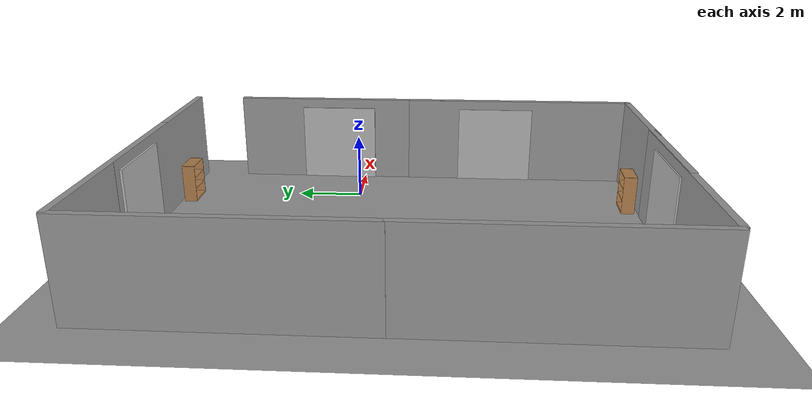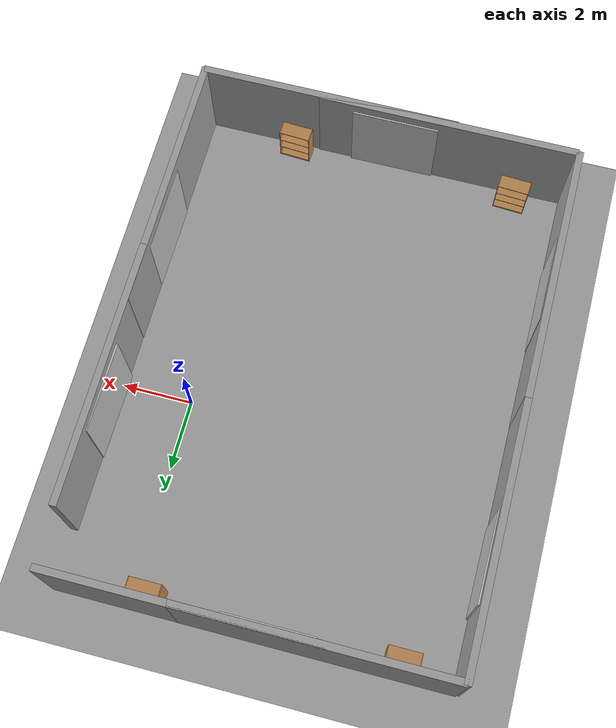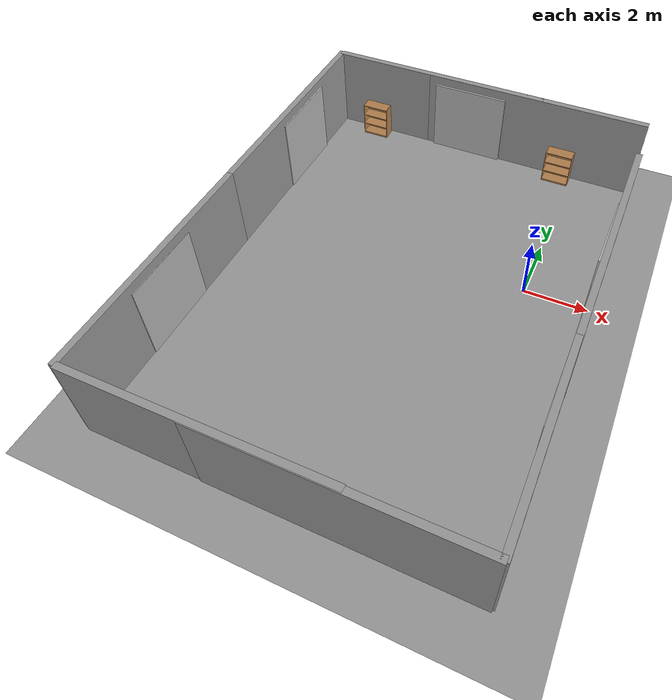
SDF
<sdf version="1.6">
 <world name="default">
  <light name="sun" type="directional">
   <pose>0 0 10 0 -0 0</pose>
   <diffuse>0.8 0.8 0.8 1</diffuse>
   <specular>0.2 0.2 0.2 1</specular>
   <attenuation>
    <range>1000</range>
    <constant>0.9</constant>
    <linear>0.01</linear>
    <quadratic>0.001</quadratic>
   </attenuation>
   <direction>0.5 0.1 -0.9</direction>
  </light>
  <scene><ambient>0.4 0.4 0.4 1</ambient><background>0.7 0.7 0.7 1</background><shadows>1</shadows></scene>
  <physics name="default_physics" default="0" type="ode">
   <max_step_size>0.01</max_step_size>
   <real_time_factor>1</real_time_factor>
   <real_time_update_rate>100</real_time_update_rate>
  </physics>
  <model name="ground_plane_0">
   <static>1</static>
   <link name="link">
    <collision name="collision">
     <geometry><plane><normal>0 0 1</normal><size>100 100</size></plane></geometry>
     <surface><friction><ode><mu>100</mu><mu2>50</mu2></ode></friction></surface>
    </collision>
    <visual name="visual">
     <cast_shadows>0</cast_shadows>
     <geometry><plane><normal>0 0 1</normal><size>100 100</size></plane></geometry>
     <material>
      <script><uri>file://media/materials/scripts/gazebo.material</uri><name>Gazebo/Grey</name></script>
     </material>
    </visual>
    <velocity_decay><linear>0</linear><angular>0</angular></velocity_decay>
   </link>
   <pose>0.497681 0 0 0 -0 0</pose>
  </model>
  <gravity>0 0 -9.8</gravity>
  <magnetic_field>6e-06 2.3e-05 -4.2e-05</magnetic_field>
  <atmosphere type="adiabatic"/>
  <spherical_coordinates>
   <surface_model>EARTH_WGS84</surface_model>
   <latitude_deg>0</latitude_deg>
   <longitude_deg>0</longitude_deg>
   <elevation>0</elevation>
   <heading_deg>0</heading_deg>
  </spherical_coordinates>
  <model name="grey_wall">
   <static>1</static>
   <link name="link">
    <pose>0 0 1.4 0 -0 0</pose>
    <collision name="collision"><geometry><box><size>7.5 0.2 2.8</size></box></geometry></collision>
    <visual name="visual">
     <cast_shadows>0</cast_shadows>
     <geometry><box><size>7.5 0.2 2.8</size></box></geometry>
     <material>
      <script>
       <uri>model://grey_wall/materials/scripts</uri>
       <uri>model://grey_wall/materials/textures</uri>
       <name>vrc/grey_wall</name>
      </script>
     </material>
    </visual>
   </link>
   <pose>-5.17478 -8.96685 0 0 -0 0</pose>
  </model>
  <model name="grey_wall_0">
   <static>1</static>
   <link name="link">
    <pose>0 0 1.4 0 -0 0</pose>
    <collision name="collision"><geometry><box><size>7.5 0.2 2.8</size></box></geometry></collision>
    <visual name="visual">
     <cast_shadows>0</cast_shadows>
     <geometry><box><size>7.5 0.2 2.8</size></box></geometry>
     <material>
      <script>
       <uri>model://grey_wall/materials/scripts</uri>
       <uri>model://grey_wall/materials/textures</uri>
       <name>vrc/grey_wall</name>
      </script>
     </material>
    </visual>
   </link>
   <pose>-5.20024 5.87324 0 0 -0 0</pose>
  </model>
  <model name="grey_wall_1">
   <static>1</static>
   <link name="link">
    <pose>0 0 1.4 0 -0 0</pose>
    <collision name="collision"><geometry><box><size>7.5 0.2 2.8</size></box></geometry></collision>
    <visual name="visual">
     <cast_shadows>0</cast_shadows>
     <geometry><box><size>7.5 0.2 2.8</size></box></geometry>
     <material>
      <script>
       <uri>model://grey_wall/materials/scripts</uri>
       <uri>model://grey_wall/materials/textures</uri>
       <name>vrc/grey_wall</name>
      </script>
     </material>
    </visual>
   </link>
   <pose>-8.94983 -5.2622 0 0 0 -1.57186</pose>
  </model>
  <model name="grey_wall_1_clone">
   <static>1</static>
   <link name="link">
    <pose>0 0 1.4 0 -0 0</pose>
    <collision name="collision"><geometry><box><size>7.5 0.2 2.8</size></box></geometry></collision>
    <visual name="visual">
     <cast_shadows>0</cast_shadows>
     <geometry><box><size>7.5 0.2 2.8</size></box></geometry>
     <material>
      <script>
       <uri>model://grey_wall/materials/scripts</uri>
       <uri>model://grey_wall/materials/textures</uri>
       <name>vrc/grey_wall</name>
      </script>
     </material>
    </visual>
   </link>
   <pose>-8.94708 2.18409 0 0 0 -1.57186</pose>
  </model>
  <model name="grey_wall_clone">
   <static>1</static>
   <link name="link">
    <pose>0 0 1.4 0 -0 0</pose>
    <collision name="collision"><geometry><box><size>7.5 0.2 2.8</size></box></geometry></collision>
    <visual name="visual">
     <cast_shadows>0</cast_shadows>
     <geometry><box><size>7.5 0.2 2.8</size></box></geometry>
     <material>
      <script>
       <uri>model://grey_wall/materials/scripts</uri>
       <uri>model://grey_wall/materials/textures</uri>
       <name>vrc/grey_wall</name>
      </script>
     </material>
    </visual>
   </link>
   <pose>-1.70554 -8.99232 0 0 -0 0</pose>
  </model>
  <model name="grey_wall_clone_0">
   <static>1</static>
   <link name="link">
    <pose>0 0 1.4 0 -0 0</pose>
    <collision name="collision"><geometry><box><size>7.5 0.2 2.8</size></box></geometry></collision>
    <visual name="visual">
     <cast_shadows>0</cast_shadows>
     <geometry><box><size>7.5 0.2 2.8</size></box></geometry>
     <material>
      <script>
       <uri>model://grey_wall/materials/scripts</uri>
       <uri>model://grey_wall/materials/textures</uri>
       <name>vrc/grey_wall</name>
      </script>
     </material>
    </visual>
   </link>
   <pose>-1.72227 5.87072 0 0 -0 0</pose>
  </model>
  <model name="grey_wall_1_clone_0">
   <static>1</static>
   <link name="link">
    <pose>0 0 1.4 0 -0 0</pose>
    <collision name="collision"><geometry><box><size>7.5 0.2 2.8</size></box></geometry></collision>
    <visual name="visual">
     <cast_shadows>0</cast_shadows>
     <geometry><box><size>7.5 0.2 2.8</size></box></geometry>
     <material>
      <script>
       <uri>model://grey_wall/materials/scripts</uri>
       <uri>model://grey_wall/materials/textures</uri>
       <name>vrc/grey_wall</name>
      </script>
     </material>
    </visual>
   </link>
   <pose>2.00289 -5.28935 0 0 0 -1.57186</pose>
  </model>
  <model name="grey_wall_1_clone_1">
   <static>1</static>
   <link name="link">
    <pose>0 0 1.4 0 -0 0</pose>
    <collision name="collision"><geometry><box><size>7.5 0.2 2.8</size></box></geometry></collision>
    <visual name="visual">
     <cast_shadows>0</cast_shadows>
     <geometry><box><size>7.5 0.2 2.8</size></box></geometry>
     <material>
      <script>
       <uri>model://grey_wall/materials/scripts</uri>
       <uri>model://grey_wall/materials/textures</uri>
       <name>vrc/grey_wall</name>
      </script>
     </material>
    </visual>
   </link>
   <pose>2.01812 0.540424 0 0 0 -1.57186</pose>
  </model>
  <model name="bookshelf">
   <static>1</static>
   <link name="link">
    <inertial><mass>1</mass></inertial>
    <collision name="back">
     <pose>0 0.005 0.6 0 -0 0</pose>
     <geometry><box><size>0.9 0.01 1.2</size></box></geometry>
    </collision>
    <visual name="visual1">
     <pose>0 0.005 0.6 0 -0 0</pose>
     <geometry><box><size>0.9 0.01 1.2</size></box></geometry>
     <material>
      <script><uri>file://media/materials/scripts/gazebo.material</uri><name>Gazebo/Wood</name></script>
     </material>
    </visual>
    <collision name="left_side">
     <pose>0.45 -0.195 0.6 0 -0 0</pose>
     <geometry><box><size>0.02 0.4 1.2</size></box></geometry>
    </collision>
    <visual name="visual2">
     <pose>0.45 -0.195 0.6 0 -0 0</pose>
     <geometry><box><size>0.02 0.4 1.2</size></box></geometry>
     <material>
      <script><uri>file://media/materials/scripts/gazebo.material</uri><name>Gazebo/Wood</name></script>
     </material>
    </visual>
    <collision name="right_side">
     <pose>-0.45 -0.195 0.6 0 -0 0</pose>
     <geometry><box><size>0.02 0.4 1.2</size></box></geometry>
    </collision>
    <visual name="visual3">
     <pose>-0.45 -0.195 0.6 0 -0 0</pose>
     <geometry><box><size>0.02 0.4 1.2</size></box></geometry>
     <material>
      <script><uri>file://media/materials/scripts/gazebo.material</uri><name>Gazebo/Wood</name></script>
     </material>
    </visual>
    <collision name="bottom">
     <pose>0 -0.195 0.03 0 -0 0</pose>
     <geometry><box><size>0.88 0.4 0.06</size></box></geometry>
    </collision>
    <visual name="visual4">
     <pose>0 -0.195 0.03 0 -0 0</pose>
     <geometry><box><size>0.88 0.4 0.06</size></box></geometry>
     <material>
      <script><uri>file://media/materials/scripts/gazebo.material</uri><name>Gazebo/Wood</name></script>
     </material>
    </visual>
    <collision name="top">
     <pose>0 -0.195 1.19 0 -0 0</pose>
     <geometry><box><size>0.88 0.4 0.02</size></box></geometry>
    </collision>
    <visual name="visual5">
     <pose>0 -0.195 1.19 0 -0 0</pose>
     <geometry><box><size>0.88 0.4 0.02</size></box></geometry>
     <material>
      <script><uri>file://media/materials/scripts/gazebo.material</uri><name>Gazebo/Wood</name></script>
     </material>
    </visual>
    <collision name="low_shelf">
     <pose>0 -0.195 0.43 0 -0 0</pose>
     <geometry><box><size>0.88 0.4 0.02</size></box></geometry>
    </collision>
    <visual name="visual6">
     <pose>0 -0.195 0.43 0 -0 0</pose>
     <geometry><box><size>0.88 0.4 0.02</size></box></geometry>
     <material>
      <script><uri>file://media/materials/scripts/gazebo.material</uri><name>Gazebo/Wood</name></script>
     </material>
    </visual>
    <collision name="high_shelf">
     <pose>0 -0.195 0.8 0 -0 0</pose>
     <geometry><box><size>0.88 0.4 0.02</size></box></geometry>
    </collision>
    <visual name="visual7">
     <pose>0 -0.195 0.8 0 -0 0</pose>
     <geometry><box><size>0.88 0.4 0.02</size></box></geometry>
     <material>
      <script><uri>file://media/materials/scripts/gazebo.material</uri><name>Gazebo/Wood</name></script>
     </material>
    </visual>
   </link>
   <pose>-7.38989 5.65901 0 0 -0 0</pose>
  </model>
  <model name="bookshelf_0">
   <static>1</static>
   <link name="link">
    <inertial><mass>1</mass></inertial>
    <collision name="back">
     <pose>0 0.005 0.6 0 -0 0</pose>
     <geometry><box><size>0.9 0.01 1.2</size></box></geometry>
    </collision>
    <visual name="visual1">
     <pose>0 0.005 0.6 0 -0 0</pose>
     <geometry><box><size>0.9 0.01 1.2</size></box></geometry>
     <material>
      <script><uri>file://media/materials/scripts/gazebo.material</uri><name>Gazebo/Wood</name></script>
     </material>
    </visual>
    <collision name="left_side">
     <pose>0.45 -0.195 0.6 0 -0 0</pose>
     <geometry><box><size>0.02 0.4 1.2</size></box></geometry>
    </collision>
    <visual name="visual2">
     <pose>0.45 -0.195 0.6 0 -0 0</pose>
     <geometry><box><size>0.02 0.4 1.2</size></box></geometry>
     <material>
      <script><uri>file://media/materials/scripts/gazebo.material</uri><name>Gazebo/Wood</name></script>
     </material>
    </visual>
    <collision name="right_side">
     <pose>-0.45 -0.195 0.6 0 -0 0</pose>
     <geometry><box><size>0.02 0.4 1.2</size></box></geometry>
    </collision>
    <visual name="visual3">
     <pose>-0.45 -0.195 0.6 0 -0 0</pose>
     <geometry><box><size>0.02 0.4 1.2</size></box></geometry>
     <material>
      <script><uri>file://media/materials/scripts/gazebo.material</uri><name>Gazebo/Wood</name></script>
     </material>
    </visual>
    <collision name="bottom">
     <pose>0 -0.195 0.03 0 -0 0</pose>
     <geometry><box><size>0.88 0.4 0.06</size></box></geometry>
    </collision>
    <visual name="visual4">
     <pose>0 -0.195 0.03 0 -0 0</pose>
     <geometry><box><size>0.88 0.4 0.06</size></box></geometry>
     <material>
      <script><uri>file://media/materials/scripts/gazebo.material</uri><name>Gazebo/Wood</name></script>
     </material>
    </visual>
    <collision name="top">
     <pose>0 -0.195 1.19 0 -0 0</pose>
     <geometry><box><size>0.88 0.4 0.02</size></box></geometry>
    </collision>
    <visual name="visual5">
     <pose>0 -0.195 1.19 0 -0 0</pose>
     <geometry><box><size>0.88 0.4 0.02</size></box></geometry>
     <material>
      <script><uri>file://media/materials/scripts/gazebo.material</uri><name>Gazebo/Wood</name></script>
     </material>
    </visual>
    <collision name="low_shelf">
     <pose>0 -0.195 0.43 0 -0 0</pose>
     <geometry><box><size>0.88 0.4 0.02</size></box></geometry>
    </collision>
    <visual name="visual6">
     <pose>0 -0.195 0.43 0 -0 0</pose>
     <geometry><box><size>0.88 0.4 0.02</size></box></geometry>
     <material>
      <script><uri>file://media/materials/scripts/gazebo.material</uri><name>Gazebo/Wood</name></script>
     </material>
    </visual>
    <collision name="high_shelf">
     <pose>0 -0.195 0.8 0 -0 0</pose>
     <geometry><box><size>0.88 0.4 0.02</size></box></geometry>
    </collision>
    <visual name="visual7">
     <pose>0 -0.195 0.8 0 -0 0</pose>
     <geometry><box><size>0.88 0.4 0.02</size></box></geometry>
     <material>
      <script><uri>file://media/materials/scripts/gazebo.material</uri><name>Gazebo/Wood</name></script>
     </material>
    </visual>
   </link>
   <pose>-0.48572 5.66462 0 0 -0 0</pose>
  </model>
  <model name="bookshelf_1">
   <static>1</static>
   <link name="link">
    <inertial><mass>1</mass></inertial>
    <collision name="back">
     <pose>0 0.005 0.6 0 -0 0</pose>
     <geometry><box><size>0.9 0.01 1.2</size></box></geometry>
    </collision>
    <visual name="visual1">
     <pose>0 0.005 0.6 0 -0 0</pose>
     <geometry><box><size>0.9 0.01 1.2</size></box></geometry>
     <material>
      <script><uri>file://media/materials/scripts/gazebo.material</uri><name>Gazebo/Wood</name></script>
     </material>
    </visual>
    <collision name="left_side">
     <pose>0.45 -0.195 0.6 0 -0 0</pose>
     <geometry><box><size>0.02 0.4 1.2</size></box></geometry>
    </collision>
    <visual name="visual2">
     <pose>0.45 -0.195 0.6 0 -0 0</pose>
     <geometry><box><size>0.02 0.4 1.2</size></box></geometry>
     <material>
      <script><uri>file://media/materials/scripts/gazebo.material</uri><name>Gazebo/Wood</name></script>
     </material>
    </visual>
    <collision name="right_side">
     <pose>-0.45 -0.195 0.6 0 -0 0</pose>
     <geometry><box><size>0.02 0.4 1.2</size></box></geometry>
    </collision>
    <visual name="visual3">
     <pose>-0.45 -0.195 0.6 0 -0 0</pose>
     <geometry><box><size>0.02 0.4 1.2</size></box></geometry>
     <material>
      <script><uri>file://media/materials/scripts/gazebo.material</uri><name>Gazebo/Wood</name></script>
     </material>
    </visual>
    <collision name="bottom">
     <pose>0 -0.195 0.03 0 -0 0</pose>
     <geometry><box><size>0.88 0.4 0.06</size></box></geometry>
    </collision>
    <visual name="visual4">
     <pose>0 -0.195 0.03 0 -0 0</pose>
     <geometry><box><size>0.88 0.4 0.06</size></box></geometry>
     <material>
      <script><uri>file://media/materials/scripts/gazebo.material</uri><name>Gazebo/Wood</name></script>
     </material>
    </visual>
    <collision name="top">
     <pose>0 -0.195 1.19 0 -0 0</pose>
     <geometry><box><size>0.88 0.4 0.02</size></box></geometry>
    </collision>
    <visual name="visual5">
     <pose>0 -0.195 1.19 0 -0 0</pose>
     <geometry><box><size>0.88 0.4 0.02</size></box></geometry>
     <material>
      <script><uri>file://media/materials/scripts/gazebo.material</uri><name>Gazebo/Wood</name></script>
     </material>
    </visual>
    <collision name="low_shelf">
     <pose>0 -0.195 0.43 0 -0 0</pose>
     <geometry><box><size>0.88 0.4 0.02</size></box></geometry>
    </collision>
    <visual name="visual6">
     <pose>0 -0.195 0.43 0 -0 0</pose>
     <geometry><box><size>0.88 0.4 0.02</size></box></geometry>
     <material>
      <script><uri>file://media/materials/scripts/gazebo.material</uri><name>Gazebo/Wood</name></script>
     </material>
    </visual>
    <collision name="high_shelf">
     <pose>0 -0.195 0.8 0 -0 0</pose>
     <geometry><box><size>0.88 0.4 0.02</size></box></geometry>
    </collision>
    <visual name="visual7">
     <pose>0 -0.195 0.8 0 -0 0</pose>
     <geometry><box><size>0.88 0.4 0.02</size></box></geometry>
     <material>
      <script><uri>file://media/materials/scripts/gazebo.material</uri><name>Gazebo/Wood</name></script>
     </material>
    </visual>
   </link>
   <pose>-7.4507 -8.65106 0 0 -0 3.08429</pose>
  </model>
  <model name="bookshelf_1_clone">
   <static>1</static>
   <link name="link">
    <inertial><mass>1</mass></inertial>
    <collision name="back">
     <pose>0 0.005 0.6 0 -0 0</pose>
     <geometry><box><size>0.9 0.01 1.2</size></box></geometry>
    </collision>
    <visual name="visual1">
     <pose>0 0.005 0.6 0 -0 0</pose>
     <geometry><box><size>0.9 0.01 1.2</size></box></geometry>
     <material>
      <script><uri>file://media/materials/scripts/gazebo.material</uri><name>Gazebo/Wood</name></script>
     </material>
    </visual>
    <collision name="left_side">
     <pose>0.45 -0.195 0.6 0 -0 0</pose>
     <geometry><box><size>0.02 0.4 1.2</size></box></geometry>
    </collision>
    <visual name="visual2">
     <pose>0.45 -0.195 0.6 0 -0 0</pose>
     <geometry><box><size>0.02 0.4 1.2</size></box></geometry>
     <material>
      <script><uri>file://media/materials/scripts/gazebo.material</uri><name>Gazebo/Wood</name></script>
     </material>
    </visual>
    <collision name="right_side">
     <pose>-0.45 -0.195 0.6 0 -0 0</pose>
     <geometry><box><size>0.02 0.4 1.2</size></box></geometry>
    </collision>
    <visual name="visual3">
     <pose>-0.45 -0.195 0.6 0 -0 0</pose>
     <geometry><box><size>0.02 0.4 1.2</size></box></geometry>
     <material>
      <script><uri>file://media/materials/scripts/gazebo.material</uri><name>Gazebo/Wood</name></script>
     </material>
    </visual>
    <collision name="bottom">
     <pose>0 -0.195 0.03 0 -0 0</pose>
     <geometry><box><size>0.88 0.4 0.06</size></box></geometry>
    </collision>
    <visual name="visual4">
     <pose>0 -0.195 0.03 0 -0 0</pose>
     <geometry><box><size>0.88 0.4 0.06</size></box></geometry>
     <material>
      <script><uri>file://media/materials/scripts/gazebo.material</uri><name>Gazebo/Wood</name></script>
     </material>
    </visual>
    <collision name="top">
     <pose>0 -0.195 1.19 0 -0 0</pose>
     <geometry><box><size>0.88 0.4 0.02</size></box></geometry>
    </collision>
    <visual name="visual5">
     <pose>0 -0.195 1.19 0 -0 0</pose>
     <geometry><box><size>0.88 0.4 0.02</size></box></geometry>
     <material>
      <script><uri>file://media/materials/scripts/gazebo.material</uri><name>Gazebo/Wood</name></script>
     </material>
    </visual>
    <collision name="low_shelf">
     <pose>0 -0.195 0.43 0 -0 0</pose>
     <geometry><box><size>0.88 0.4 0.02</size></box></geometry>
    </collision>
    <visual name="visual6">
     <pose>0 -0.195 0.43 0 -0 0</pose>
     <geometry><box><size>0.88 0.4 0.02</size></box></geometry>
     <material>
      <script><uri>file://media/materials/scripts/gazebo.material</uri><name>Gazebo/Wood</name></script>
     </material>
    </visual>
    <collision name="high_shelf">
     <pose>0 -0.195 0.8 0 -0 0</pose>
     <geometry><box><size>0.88 0.4 0.02</size></box></geometry>
    </collision>
    <visual name="visual7">
     <pose>0 -0.195 0.8 0 -0 0</pose>
     <geometry><box><size>0.88 0.4 0.02</size></box></geometry>
     <material>
      <script><uri>file://media/materials/scripts/gazebo.material</uri><name>Gazebo/Wood</name></script>
     </material>
    </visual>
   </link>
   <pose>-0.793858 -8.7856 0 0 -0 3.08429</pose>
  </model>
  <model name="wall2">
   <pose>-3.95115 5.7723 0 0 -0 0</pose>
   <link name="Wall_2">
    <collision name="Wall_2_Collision">
     <geometry><box><size>2.5 0.15 2.5</size></box></geometry>
     <pose>0 0 1.25 0 -0 0</pose>
    </collision>
    <visual name="Wall_2_Visual">
     <pose>0 0 1.25 0 -0 0</pose>
     <geometry><box><size>2.5 0.15 2.5</size></box></geometry>
     <material>
      <script>
       <uri>model://wall_cricle_black/materials/scripts/texturec.material</uri>
       <name>walla-texture</name>
      </script>
     </material>
    </visual>
   </link>
   <static>1</static>
  </model>
  <model name="wall1">
   <pose>-3.6906 -8.89047 0 0 -0 0</pose>
   <link name="Wall_1">
    <collision name="Wall_1_Collision">
     <geometry><box><size>2.5 0.15 2.5</size></box></geometry>
     <pose>0 0 1.25 0 -0 0</pose>
    </collision>
    <visual name="Wall_1_Visual">
     <pose>0 0 1.25 0 -0 0</pose>
     <geometry><box><size>2.5 0.15 2.5</size></box></geometry>
     <material>
      <script>
       <uri>model://wall_square_black/materials/scripts/textures.material</uri>
       <name>wallb-texture</name>
      </script>
     </material>
    </visual>
   </link>
   <static>1</static>
  </model>
  <model name="wall0">
   <pose>-8.87794 2.72026 0 0 -0 1.56198</pose>
   <link name="Wall_0">
    <collision name="Wall_0_Collision">
     <geometry><box><size>2.5 0.15 2.5</size></box></geometry>
     <pose>0 0 1.25 0 -0 0</pose>
    </collision>
    <visual name="Wall_0_Visual">
     <pose>0 0 1.25 0 -0 0</pose>
     <geometry><box><size>2.5 0.15 2.5</size></box></geometry>
     <material>
      <script>
       <uri>model://wall_triangle_black/materials/scripts/texturet.material</uri>
       <uri>model://wall_triangle_black/materials/texturest</uri>
       <name>wallc-texture</name>
      </script>
     </material>
    </visual>
   </link>
   <static>1</static>
  </model>
  <model name="wall2_0">
   <pose>-8.90293 -5.11417 0 0 0 -1.56694</pose>
   <link name="Wall_2">
    <collision name="Wall_2_Collision">
     <geometry><box><size>2.5 0.15 2.5</size></box></geometry>
     <pose>0 0 1.25 0 -0 0</pose>
    </collision>
    <visual name="Wall_2_Visual">
     <pose>0 0 1.25 0 -0 0</pose>
     <geometry><box><size>2.5 0.15 2.5</size></box></geometry>
     <material>
      <script>
       <uri>model://wall_cricle_black/materials/scripts/texturec.material</uri>
       <name>walla-texture</name>
      </script>
     </material>
    </visual>
   </link>
   <static>1</static>
  </model>
  <model name="wall0_clone">
   <pose>1.96332 -4.52729 0 0 -0 1.56198</pose>
   <link name="Wall_0">
    <collision name="Wall_0_Collision">
     <geometry><box><size>2.5 0.15 2.5</size></box></geometry>
     <pose>0 0 1.25 0 -0 0</pose>
    </collision>
    <visual name="Wall_0_Visual">
     <pose>0 0 1.25 0 -0 0</pose>
     <geometry><box><size>2.5 0.15 2.5</size></box></geometry>
     <material>
      <script>
       <uri>model://wall_triangle_black/materials/scripts/texturet.material</uri>
       <uri>model://wall_triangle_black/materials/texturest</uri>
       <name>wallc-texture</name>
      </script>
     </material>
    </visual>
   </link>
   <static>1</static>
  </model>
  <model name="wall1_clone">
   <pose>1.94952 0.904167 0 0 -0 1.55769</pose>
   <link name="Wall_1">
    <collision name="Wall_1_Collision">
     <geometry><box><size>2.5 0.15 2.5</size></box></geometry>
     <pose>0 0 1.25 0 -0 0</pose>
    </collision>
    <visual name="Wall_1_Visual">
     <pose>0 0 1.25 0 -0 0</pose>
     <geometry><box><size>2.5 0.15 2.5</size></box></geometry>
     <material>
      <script>
       <uri>model://wall_square_black/materials/scripts/textures.material</uri>
       <name>wallb-texture</name>
      </script>
     </material>
    </visual>
   </link>
   <static>1</static>
  </model>
 </world>
</sdf>
